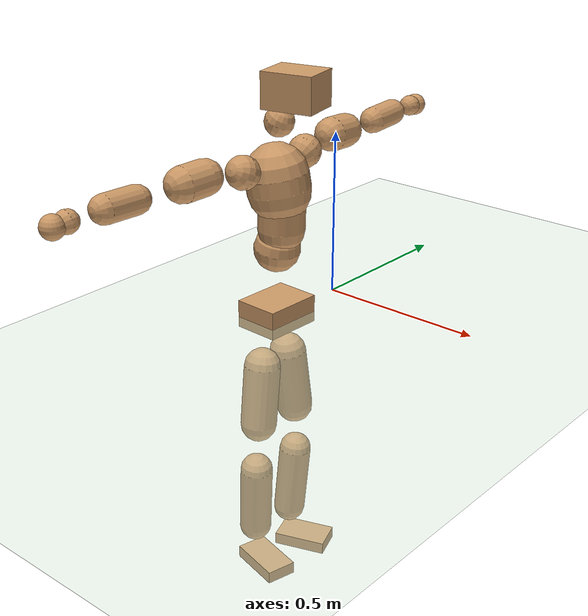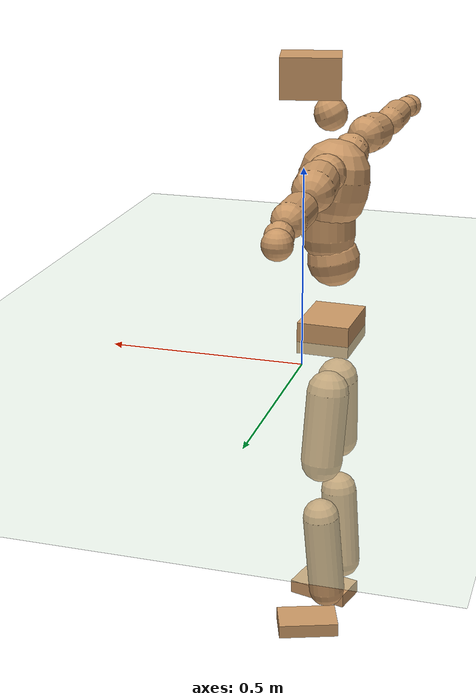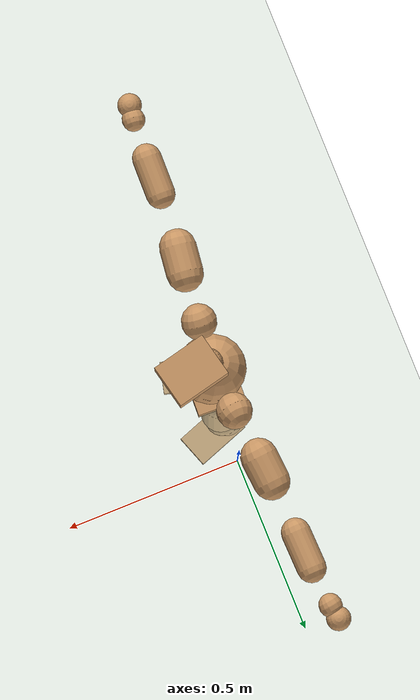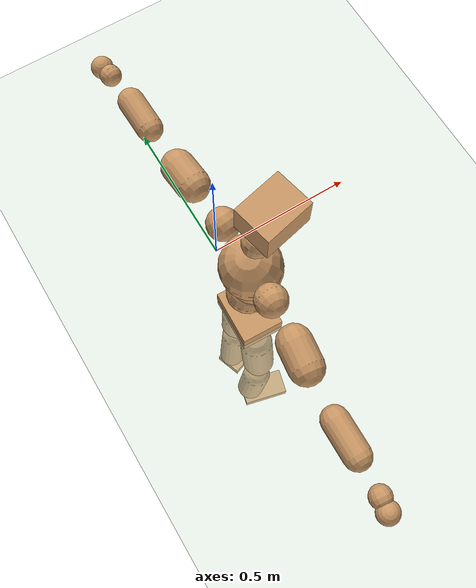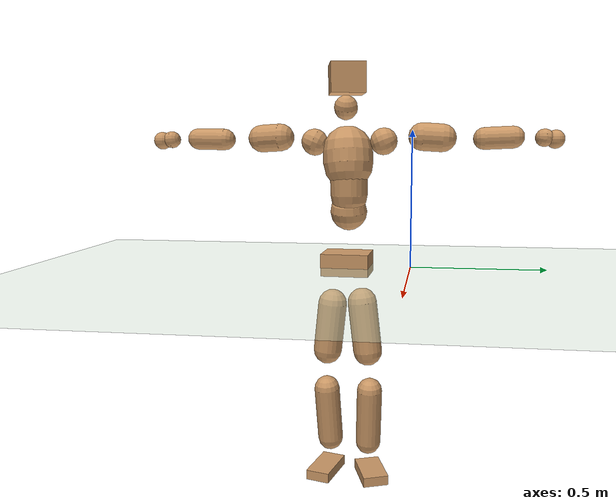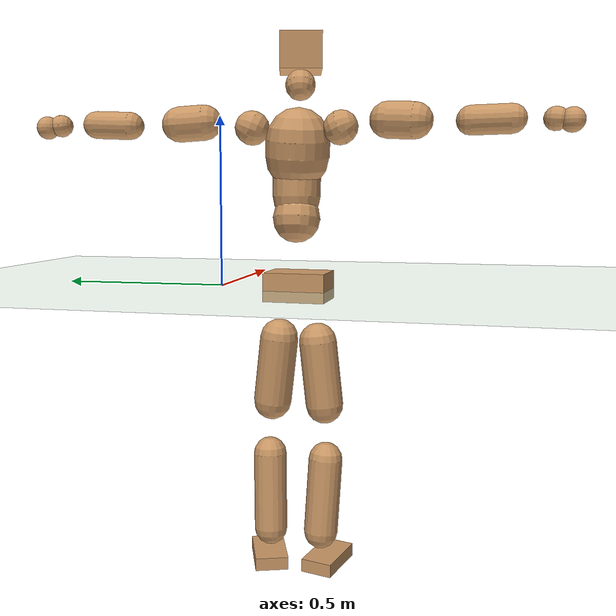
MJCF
<mujoco model="humanoid">
  <compiler coordinate="local" angle="radian"/>
  <default>
    <joint damping="0.0" armature="0.01" stiffness="0.0" limited="true"/>
    <geom conaffinity="1" condim="3" contype="7" margin="0.001" rgba="0.8 0.6 .4 1"/>
  </default>
  <asset>
    <texture type="skybox" builtin="gradient" rgb1=".4 .5 .6" rgb2="0 0 0" width="100" height="100"/>
    <texture builtin="flat" height="1278" mark="cross" markrgb="1 1 1" name="texgeom" random="0.01" rgb1="0.8 0.6 0.4" rgb2="0.8 0.6 0.4" type="cube" width="127"/>
    <texture builtin="checker" height="100" name="texplane" rgb1="0 0 0" rgb2="0.8 0.8 0.8" type="2d" width="100"/>
    <material name="MatPlane" reflectance="0.5" shininess="1" specular="1" texrepeat="60 60" texture="texplane"/>
    <material name="geom" texture="texgeom" texuniform="true"/>
  </asset>
  <worldbody>
    <light cutoff="100" diffuse="1 1 1" dir="-0 0 -1.3" directional="true" exponent="1" pos="0 0 1.3" specular=".1 .1 .1"/>
    <geom conaffinity="1" condim="3" name="floor" pos="0 0 0" rgba="0.8 0.9 0.8 1" size="100 100 .2" type="plane" material="MatPlane"/>
    <body name="Pelvis" pos="-0.007 -0.2418 0.016">
      <freejoint name="Pelvis"/>
      <geom type="box" contype="1" conaffinity="1" density="5359.375184" pos="-0.0114 0.0004 -0.0079" size="0.0689 0.0899 0.0419" quat="0.9998 0.0000 0.0000 -0.0179" name="Pelvis"/>
      <body name="L_Hip" pos="-0.0219 0.0478 -0.0777">
        <joint name="L_Hip_x" type="hinge" pos="0 0 0" axis="1 0 0" stiffness="1600" damping="160" armature="0.02" range="-180.0000 180.0000"/>
        <joint name="L_Hip_y" type="hinge" pos="0 0 0" axis="0 1 0" stiffness="1600" damping="160" armature="0.02" range="-180.0000 180.0000"/>
        <joint name="L_Hip_z" type="hinge" pos="0 0 0" axis="0 0 1" stiffness="1600" damping="160" armature="0.02" range="-180.0000 180.0000"/>
        <geom type="capsule" contype="1" conaffinity="1" density="2040.816327" size="0.0559" fromto="0.0037 0.0100 -0.0852 0.0122 0.0328 -0.2805" name="L_Hip"/>
        <body name="L_Knee" pos="0.016 0.0427 -0.3657">
          <joint name="L_Knee_x" type="hinge" pos="0 0 0" axis="1 0 0" stiffness="1600" damping="160" armature="0.02" range="-180.0000 180.0000"/>
          <joint name="L_Knee_y" type="hinge" pos="0 0 0" axis="0 1 0" stiffness="1600" damping="160" armature="0.02" range="-180.0000 180.0000"/>
          <joint name="L_Knee_z" type="hinge" pos="0 0 0" axis="0 0 1" stiffness="1600" damping="160" armature="0.02" range="-180.0000 180.0000"/>
          <geom type="capsule" contype="1" conaffinity="1" density="1234.567901" size="0.0495" fromto="-0.0065 -0.0024 -0.0792 -0.0252 -0.0094 -0.3076" name="L_Knee"/>
          <body name="L_Ankle" pos="-0.0317 -0.0118 -0.3868">
            <joint name="L_Ankle_x" type="hinge" pos="0 0 0" axis="1 0 0" stiffness="1600" damping="160" armature="0.02" range="-180.0000 180.0000"/>
            <joint name="L_Ankle_y" type="hinge" pos="0 0 0" axis="0 1 0" stiffness="1600" damping="160" armature="0.02" range="-180.0000 180.0000"/>
            <joint name="L_Ankle_z" type="hinge" pos="0 0 0" axis="0 0 1" stiffness="1600" damping="160" armature="0.02" range="-180.0000 180.0000"/>
            <geom type="box" contype="1" conaffinity="1" density="1000.000031" pos="0.0568 0.0204 -0.0282" size="0.0825 0.0497 0.0192" quat="0.9852 0.0000 0.0000 0.1711" name="L_Ankle"/>
            <body name="L_Toe" pos="0.1137 0.0407 -0.0563">
              <joint name="L_Toe_x" type="hinge" pos="0 0 0" axis="1 0 0" stiffness="1000" damping="100" armature="0.02" range="-180.0000 180.0000"/>
              <joint name="L_Toe_y" type="hinge" pos="0 0 0" axis="0 1 0" stiffness="1000" damping="100" armature="0.02" range="-180.0000 180.0000"/>
              <joint name="L_Toe_z" type="hinge" pos="0 0 0" axis="0 0 1" stiffness="1000" damping="100" armature="0.02" range="-180.0000 180.0000"/>
              <geom type="box" contype="1" conaffinity="1" density="7673032.935142" pos="0.0000 0.0000 0.0286" size="0.001 0.0025 0.001" quat="0.9844 0.0000 0.0000 0.1760" name="L_Toe"/>
            </body>
          </body>
        </body>
      </body>
      <body name="R_Hip" pos="-0.0183 -0.0491 -0.0856">
        <joint name="R_Hip_x" type="hinge" pos="0 0 0" axis="1 0 0" stiffness="1600" damping="160" armature="0.02" range="-180.0000 180.0000"/>
        <joint name="R_Hip_y" type="hinge" pos="0 0 0" axis="0 1 0" stiffness="1600" damping="160" armature="0.02" range="-180.0000 180.0000"/>
        <joint name="R_Hip_z" type="hinge" pos="0 0 0" axis="0 0 1" stiffness="1600" damping="160" armature="0.02" range="-180.0000 180.0000"/>
        <geom type="capsule" contype="1" conaffinity="1" density="2040.816327" size="0.055" fromto="0.0006 -0.0093 -0.0845 0.0019 -0.0302 -0.2746" name="R_Hip"/>
        <body name="R_Knee" pos="0.0025 -0.0395 -0.359">
          <joint name="R_Knee_x" type="hinge" pos="0 0 0" axis="1 0 0" stiffness="1600" damping="160" armature="0.02" range="-180.0000 180.0000"/>
          <joint name="R_Knee_y" type="hinge" pos="0 0 0" axis="0 1 0" stiffness="1600" damping="160" armature="0.02" range="-180.0000 180.0000"/>
          <joint name="R_Knee_z" type="hinge" pos="0 0 0" axis="0 0 1" stiffness="1600" damping="160" armature="0.02" range="-180.0000 180.0000"/>
          <geom type="capsule" contype="1" conaffinity="1" density="1234.567901" size="0.0499" fromto="-0.0062 0.0036 -0.0796 -0.0234 0.0136 -0.2998" name="R_Knee"/>
          <body name="R_Ankle" pos="-0.0296 0.0172 -0.3794">
            <joint name="R_Ankle_x" type="hinge" pos="0 0 0" axis="1 0 0" stiffness="1600" damping="160" armature="0.02" range="-180.0000 180.0000"/>
            <joint name="R_Ankle_y" type="hinge" pos="0 0 0" axis="0 1 0" stiffness="1600" damping="160" armature="0.02" range="-180.0000 180.0000"/>
            <joint name="R_Ankle_z" type="hinge" pos="0 0 0" axis="0 0 1" stiffness="1600" damping="160" armature="0.02" range="-180.0000 180.0000"/>
            <geom type="box" contype="1" conaffinity="1" density="1000.000001" pos="0.0612 -0.0150 -0.0282" size="0.0852 0.0471 0.0196" quat="0.9928 0.0000 0.0000 -0.1200" name="R_Ankle"/>
            <body name="R_Toe" pos="0.1225 -0.0301 -0.0564">
              <joint name="R_Toe_x" type="hinge" pos="0 0 0" axis="1 0 0" stiffness="1000" damping="100" armature="0.02" range="-180.0000 180.0000"/>
              <joint name="R_Toe_y" type="hinge" pos="0 0 0" axis="0 1 0" stiffness="1000" damping="100" armature="0.02" range="-180.0000 180.0000"/>
              <joint name="R_Toe_z" type="hinge" pos="0 0 0" axis="0 0 1" stiffness="1000" damping="100" armature="0.02" range="-180.0000 180.0000"/>
              <geom type="box" contype="1" conaffinity="1" density="8430421.828529" pos="0.0000 0.0000 0.0299" size="0.0009 0.0023 0.0011" quat="0.9939 0.0000 0.0000 -0.1106" name="R_Toe"/>
            </body>
          </body>
        </body>
      </body>
      <body name="Torso" pos="-0.0283 0.0038 0.116">
        <joint name="Torso_x" type="hinge" pos="0 0 0" axis="1 0 0" stiffness="2000" damping="200" armature="0.02" range="-180.0000 180.0000"/>
        <joint name="Torso_y" type="hinge" pos="0 0 0" axis="0 1 0" stiffness="2000" damping="200" armature="0.02" range="-180.0000 180.0000"/>
        <joint name="Torso_z" type="hinge" pos="0 0 0" axis="0 0 1" stiffness="2000" damping="200" armature="0.02" range="-180.0000 180.0000"/>
        <geom type="capsule" contype="1" conaffinity="1" density="2040.816327" size="0.069" fromto="0.0137 0.0030 0.0712 0.0141 0.0030 0.0732" name="Torso"/>
        <body name="Spine" pos="0.0278 0.006 0.1444">
          <joint name="Spine_x" type="hinge" pos="0 0 0" axis="1 0 0" stiffness="2000" damping="200" armature="0.02" range="-180.0000 180.0000"/>
          <joint name="Spine_y" type="hinge" pos="0 0 0" axis="0 1 0" stiffness="2000" damping="200" armature="0.02" range="-180.0000 180.0000"/>
          <joint name="Spine_z" type="hinge" pos="0 0 0" axis="0 0 1" stiffness="2000" damping="200" armature="0.02" range="-180.0000 180.0000"/>
          <geom type="capsule" contype="1" conaffinity="1" density="2040.816327" size="0.0691" fromto="0.0024 -0.0001 0.0691 -0.0004 0.0000 -0.0107" name="Spine"/>
          <body name="Chest" pos="0.002 -0.0001 0.0583">
            <joint name="Chest_x" type="hinge" pos="0 0 0" axis="1 0 0" stiffness="2000" damping="200" armature="0.02" range="-180.0000 180.0000"/>
            <joint name="Chest_y" type="hinge" pos="0 0 0" axis="0 1 0" stiffness="2000" damping="200" armature="0.02" range="-180.0000 180.0000"/>
            <joint name="Chest_z" type="hinge" pos="0 0 0" axis="0 0 1" stiffness="2000" damping="200" armature="0.02" range="-180.0000 180.0000"/>
            <geom type="capsule" contype="1" conaffinity="1" density="2040.816327" size="0.0922" fromto="-0.0138 -0.0057 0.0910 -0.0067 -0.0028 0.0445" name="Chest"/>
            <body name="Neck" pos="-0.0242 -0.0147 0.1989">
              <joint name="Neck_x" type="hinge" pos="0 0 0" axis="1 0 0" stiffness="1000" damping="100" armature="0.02" range="-180.0000 180.0000"/>
              <joint name="Neck_y" type="hinge" pos="0 0 0" axis="0 1 0" stiffness="1000" damping="100" armature="0.02" range="-180.0000 180.0000"/>
              <joint name="Neck_z" type="hinge" pos="0 0 0" axis="0 0 1" stiffness="1000" damping="100" armature="0.02" range="-180.0000 180.0000"/>
              <geom type="capsule" contype="1" conaffinity="1" density="1000" size="0.0429" fromto="0.0239 0.0047 0.0460 0.0248 0.0049 0.0478" name="Neck"/>
              <body name="Head" pos="0.0487 0.0096 0.0938">
                <joint name="Head_x" type="hinge" pos="0 0 0" axis="1 0 0" stiffness="1000" damping="100" armature="0.02" range="-180.0000 180.0000"/>
                <joint name="Head_y" type="hinge" pos="0 0 0" axis="0 1 0" stiffness="1000" damping="100" armature="0.02" range="-180.0000 180.0000"/>
                <joint name="Head_z" type="hinge" pos="0 0 0" axis="0 0 1" stiffness="1000" damping="100" armature="0.02" range="-180.0000 180.0000"/>
                <geom type="box" contype="1" conaffinity="1" density="2250.000166" pos="0.0254 0.0058 0.0479" size="0.0762 0.0607 0.0514" quat="0.9937 0.0000 0.0000 0.1122" name="Head"/>
              </body>
            </body>
            <body name="L_Thorax" pos="-0.0154 0.0672 0.1051">
              <joint name="L_Thorax_x" type="hinge" pos="0 0 0" axis="1 0 0" stiffness="1000" damping="100" armature="0.02" range="-180.0000 180.0000"/>
              <joint name="L_Thorax_y" type="hinge" pos="0 0 0" axis="0 1 0" stiffness="1000" damping="100" armature="0.02" range="-180.0000 180.0000"/>
              <joint name="L_Thorax_z" type="hinge" pos="0 0 0" axis="0 0 1" stiffness="1000" damping="100" armature="0.02" range="-180.0000 180.0000"/>
              <geom type="capsule" contype="1" conaffinity="1" density="1000" size="0.0492" fromto="-0.0079 0.0582 0.0214 -0.0081 0.0600 0.0221" name="L_Thorax"/>
              <body name="L_Shoulder" pos="-0.016 0.1182 0.0435">
                <joint name="L_Shoulder_x" type="hinge" pos="0 0 0" axis="1 0 0" stiffness="1000" damping="100" armature="0.02" range="-720.0000 720.0000"/>
                <joint name="L_Shoulder_y" type="hinge" pos="0 0 0" axis="0 1 0" stiffness="1000" damping="100" armature="0.02" range="-720.0000 720.0000"/>
                <joint name="L_Shoulder_z" type="hinge" pos="0 0 0" axis="0 0 1" stiffness="1000" damping="100" armature="0.02" range="-720.0000 720.0000"/>
                <geom type="capsule" contype="1" conaffinity="1" density="1000" size="0.0508" fromto="-0.0068 0.0804 -0.0050 -0.0131 0.1543 -0.0096" name="L_Shoulder"/>
                <body name="L_Elbow" pos="-0.02 0.2347 -0.0147">
                  <joint name="L_Elbow_x" type="hinge" pos="0 0 0" axis="1 0 0" stiffness="1000" damping="100" armature="0.02" range="-720.0000 720.0000"/>
                  <joint name="L_Elbow_y" type="hinge" pos="0 0 0" axis="0 1 0" stiffness="1000" damping="100" armature="0.02" range="-720.0000 720.0000"/>
                  <joint name="L_Elbow_z" type="hinge" pos="0 0 0" axis="0 0 1" stiffness="1000" damping="100" armature="0.02" range="-720.0000 720.0000"/>
                  <geom type="capsule" contype="1" conaffinity="1" density="1000" size="0.0399" fromto="-0.0022 0.0698 0.0031 -0.0055 0.1744 0.0076" name="L_Elbow"/>
                  <body name="L_Wrist" pos="-0.0077 0.2442 0.0107">
                    <joint name="L_Wrist_x" type="hinge" pos="0 0 0" axis="1 0 0" stiffness="600" damping="60" armature="0.02" range="-180.0000 180.0000"/>
                    <joint name="L_Wrist_y" type="hinge" pos="0 0 0" axis="0 1 0" stiffness="600" damping="60" armature="0.02" range="-180.0000 180.0000"/>
                    <joint name="L_Wrist_z" type="hinge" pos="0 0 0" axis="0 0 1" stiffness="600" damping="60" armature="0.02" range="-180.0000 180.0000"/>
                    <geom type="capsule" contype="1" conaffinity="1" density="1000" size="0.0321" fromto="-0.0071 0.0397 -0.0050 -0.0074 0.0417 -0.0052" name="L_Wrist"/>
                    <body name="L_Hand" pos="-0.0145 0.0814 -0.0102">
                      <joint name="L_Hand_x" type="hinge" pos="0 0 0" axis="1 0 0" stiffness="600" damping="60" armature="0.02" range="-180.0000 180.0000"/>
                      <joint name="L_Hand_y" type="hinge" pos="0 0 0" axis="0 1 0" stiffness="600" damping="60" armature="0.02" range="-180.0000 180.0000"/>
                      <joint name="L_Hand_z" type="hinge" pos="0 0 0" axis="0 0 1" stiffness="600" damping="60" armature="0.02" range="-180.0000 180.0000"/>
                      <geom type="sphere" contype="1" conaffinity="1" density="1000" size="0.0335" pos="0.0000 0.0000 0.0000" name="L_Hand"/>
                    </body>
                  </body>
                </body>
              </body>
            </body>
            <body name="R_Thorax" pos="-0.022 -0.078 0.1024">
              <joint name="R_Thorax_x" type="hinge" pos="0 0 0" axis="1 0 0" stiffness="1000" damping="100" armature="0.02" range="-180.0000 180.0000"/>
              <joint name="R_Thorax_y" type="hinge" pos="0 0 0" axis="0 1 0" stiffness="1000" damping="100" armature="0.02" range="-180.0000 180.0000"/>
              <joint name="R_Thorax_z" type="hinge" pos="0 0 0" axis="0 0 1" stiffness="1000" damping="100" armature="0.02" range="-180.0000 180.0000"/>
              <geom type="capsule" contype="1" conaffinity="1" density="1000" size="0.0486" fromto="-0.0034 -0.0521 0.0212 -0.0035 -0.0540 0.0220" name="R_Thorax"/>
              <body name="R_Shoulder" pos="-0.0069 -0.1061 0.0432">
                <joint name="R_Shoulder_x" type="hinge" pos="0 0 0" axis="1 0 0" stiffness="1000" damping="100" armature="0.02" range="-720.0000 720.0000"/>
                <joint name="R_Shoulder_y" type="hinge" pos="0 0 0" axis="0 1 0" stiffness="1000" damping="100" armature="0.02" range="-720.0000 720.0000"/>
                <joint name="R_Shoulder_z" type="hinge" pos="0 0 0" axis="0 0 1" stiffness="1000" damping="100" armature="0.02" range="-720.0000 720.0000"/>
                <geom type="capsule" contype="1" conaffinity="1" density="1000" size="0.0507" fromto="-0.0095 -0.0800 -0.0044 -0.0183 -0.1533 -0.0085" name="R_Shoulder"/>
                <body name="R_Elbow" pos="-0.0279 -0.2333 -0.0129">
                  <joint name="R_Elbow_x" type="hinge" pos="0 0 0" axis="1 0 0" stiffness="1000" damping="100" armature="0.02" range="-720.0000 720.0000"/>
                  <joint name="R_Elbow_y" type="hinge" pos="0 0 0" axis="0 1 0" stiffness="1000" damping="100" armature="0.02" range="-720.0000 720.0000"/>
                  <joint name="R_Elbow_z" type="hinge" pos="0 0 0" axis="0 0 1" stiffness="1000" damping="100" armature="0.02" range="-720.0000 720.0000"/>
                  <geom type="capsule" contype="1" conaffinity="1" density="1000" size="0.0396" fromto="-0.0011 -0.0696 0.0013 -0.0029 -0.1744 0.0033" name="R_Elbow"/>
                  <body name="R_Wrist" pos="-0.004 -0.244 0.0046">
                    <joint name="R_Wrist_x" type="hinge" pos="0 0 0" axis="1 0 0" stiffness="600" damping="60" armature="0.02" range="-180.0000 180.0000"/>
                    <joint name="R_Wrist_y" type="hinge" pos="0 0 0" axis="0 1 0" stiffness="600" damping="60" armature="0.02" range="-180.0000 180.0000"/>
                    <joint name="R_Wrist_z" type="hinge" pos="0 0 0" axis="0 0 1" stiffness="600" damping="60" armature="0.02" range="-180.0000 180.0000"/>
                    <geom type="capsule" contype="1" conaffinity="1" density="1000" size="0.0315" fromto="-0.0046 -0.0393 -0.0038 -0.0048 -0.0413 -0.0040" name="R_Wrist"/>
                    <body name="R_Hand" pos="-0.0094 -0.0807 -0.0078">
                      <joint name="R_Hand_x" type="hinge" pos="0 0 0" axis="1 0 0" stiffness="600" damping="60" armature="0.02" range="-180.0000 180.0000"/>
                      <joint name="R_Hand_y" type="hinge" pos="0 0 0" axis="0 1 0" stiffness="600" damping="60" armature="0.02" range="-180.0000 180.0000"/>
                      <joint name="R_Hand_z" type="hinge" pos="0 0 0" axis="0 0 1" stiffness="600" damping="60" armature="0.02" range="-180.0000 180.0000"/>
                      <geom type="sphere" contype="1" conaffinity="1" density="1000" size="0.0328" pos="0.0000 0.0000 0.0000" name="R_Hand"/>
                    </body>
                  </body>
                </body>
              </body>
            </body>
          </body>
        </body>
      </body>
    </body>
  </worldbody>
  <actuator>
    <motor name="L_Hip_x" joint="L_Hip_x" gear="500"/>
    <motor name="L_Hip_y" joint="L_Hip_y" gear="500"/>
    <motor name="L_Hip_z" joint="L_Hip_z" gear="500"/>
    <motor name="L_Knee_x" joint="L_Knee_x" gear="500"/>
    <motor name="L_Knee_y" joint="L_Knee_y" gear="500"/>
    <motor name="L_Knee_z" joint="L_Knee_z" gear="500"/>
    <motor name="L_Ankle_x" joint="L_Ankle_x" gear="500"/>
    <motor name="L_Ankle_y" joint="L_Ankle_y" gear="500"/>
    <motor name="L_Ankle_z" joint="L_Ankle_z" gear="500"/>
    <motor name="L_Toe_x" joint="L_Toe_x" gear="500"/>
    <motor name="L_Toe_y" joint="L_Toe_y" gear="500"/>
    <motor name="L_Toe_z" joint="L_Toe_z" gear="500"/>
    <motor name="R_Hip_x" joint="R_Hip_x" gear="500"/>
    <motor name="R_Hip_y" joint="R_Hip_y" gear="500"/>
    <motor name="R_Hip_z" joint="R_Hip_z" gear="500"/>
    <motor name="R_Knee_x" joint="R_Knee_x" gear="500"/>
    <motor name="R_Knee_y" joint="R_Knee_y" gear="500"/>
    <motor name="R_Knee_z" joint="R_Knee_z" gear="500"/>
    <motor name="R_Ankle_x" joint="R_Ankle_x" gear="500"/>
    <motor name="R_Ankle_y" joint="R_Ankle_y" gear="500"/>
    <motor name="R_Ankle_z" joint="R_Ankle_z" gear="500"/>
    <motor name="R_Toe_x" joint="R_Toe_x" gear="500"/>
    <motor name="R_Toe_y" joint="R_Toe_y" gear="500"/>
    <motor name="R_Toe_z" joint="R_Toe_z" gear="500"/>
    <motor name="Torso_x" joint="Torso_x" gear="500"/>
    <motor name="Torso_y" joint="Torso_y" gear="500"/>
    <motor name="Torso_z" joint="Torso_z" gear="500"/>
    <motor name="Spine_x" joint="Spine_x" gear="500"/>
    <motor name="Spine_y" joint="Spine_y" gear="500"/>
    <motor name="Spine_z" joint="Spine_z" gear="500"/>
    <motor name="Chest_x" joint="Chest_x" gear="500"/>
    <motor name="Chest_y" joint="Chest_y" gear="500"/>
    <motor name="Chest_z" joint="Chest_z" gear="500"/>
    <motor name="Neck_x" joint="Neck_x" gear="500"/>
    <motor name="Neck_y" joint="Neck_y" gear="500"/>
    <motor name="Neck_z" joint="Neck_z" gear="500"/>
    <motor name="Head_x" joint="Head_x" gear="500"/>
    <motor name="Head_y" joint="Head_y" gear="500"/>
    <motor name="Head_z" joint="Head_z" gear="500"/>
    <motor name="L_Thorax_x" joint="L_Thorax_x" gear="500"/>
    <motor name="L_Thorax_y" joint="L_Thorax_y" gear="500"/>
    <motor name="L_Thorax_z" joint="L_Thorax_z" gear="500"/>
    <motor name="L_Shoulder_x" joint="L_Shoulder_x" gear="500"/>
    <motor name="L_Shoulder_y" joint="L_Shoulder_y" gear="500"/>
    <motor name="L_Shoulder_z" joint="L_Shoulder_z" gear="500"/>
    <motor name="L_Elbow_x" joint="L_Elbow_x" gear="500"/>
    <motor name="L_Elbow_y" joint="L_Elbow_y" gear="500"/>
    <motor name="L_Elbow_z" joint="L_Elbow_z" gear="500"/>
    <motor name="L_Wrist_x" joint="L_Wrist_x" gear="500"/>
    <motor name="L_Wrist_y" joint="L_Wrist_y" gear="500"/>
    <motor name="L_Wrist_z" joint="L_Wrist_z" gear="500"/>
    <motor name="L_Hand_x" joint="L_Hand_x" gear="500"/>
    <motor name="L_Hand_y" joint="L_Hand_y" gear="500"/>
    <motor name="L_Hand_z" joint="L_Hand_z" gear="500"/>
    <motor name="R_Thorax_x" joint="R_Thorax_x" gear="500"/>
    <motor name="R_Thorax_y" joint="R_Thorax_y" gear="500"/>
    <motor name="R_Thorax_z" joint="R_Thorax_z" gear="500"/>
    <motor name="R_Shoulder_x" joint="R_Shoulder_x" gear="500"/>
    <motor name="R_Shoulder_y" joint="R_Shoulder_y" gear="500"/>
    <motor name="R_Shoulder_z" joint="R_Shoulder_z" gear="500"/>
    <motor name="R_Elbow_x" joint="R_Elbow_x" gear="500"/>
    <motor name="R_Elbow_y" joint="R_Elbow_y" gear="500"/>
    <motor name="R_Elbow_z" joint="R_Elbow_z" gear="500"/>
    <motor name="R_Wrist_x" joint="R_Wrist_x" gear="500"/>
    <motor name="R_Wrist_y" joint="R_Wrist_y" gear="500"/>
    <motor name="R_Wrist_z" joint="R_Wrist_z" gear="500"/>
    <motor name="R_Hand_x" joint="R_Hand_x" gear="500"/>
    <motor name="R_Hand_y" joint="R_Hand_y" gear="500"/>
    <motor name="R_Hand_z" joint="R_Hand_z" gear="500"/>
  </actuator>
  <contact>
    <exclude body1="Torso" body2="Chest"/>
    <exclude body1="Head" body2="Chest"/>
    <exclude body1="R_Knee" body2="R_Toe"/>
    <exclude body1="R_Knee" body2="L_Ankle"/>
    <exclude body1="R_Knee" body2="L_Toe"/>
    <exclude body1="L_Knee" body2="L_Toe"/>
    <exclude body1="L_Knee" body2="R_Ankle"/>
    <exclude body1="L_Knee" body2="R_Toe"/>
    <exclude body1="L_Shoulder" body2="Chest"/>
    <exclude body1="R_Shoulder" body2="Chest"/>
  </contact>
  <sensor/>
  <size njmax="700" nconmax="700"/>
</mujoco>
